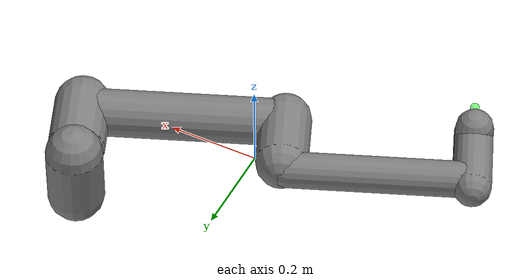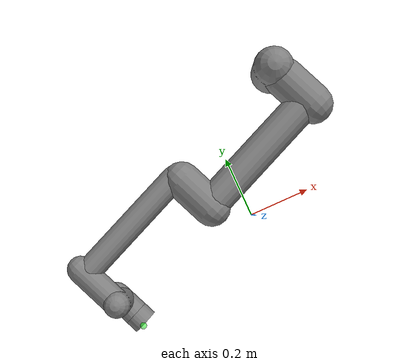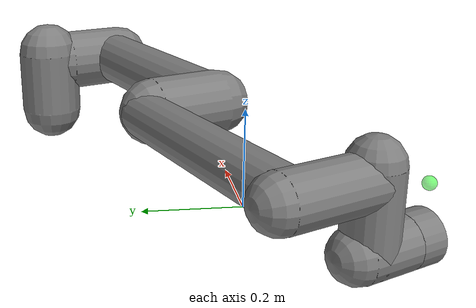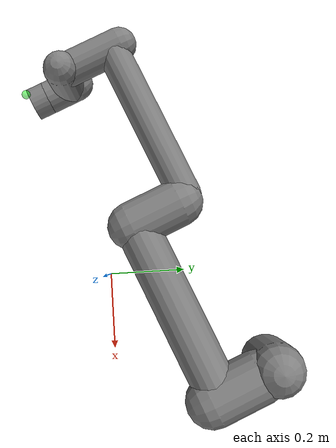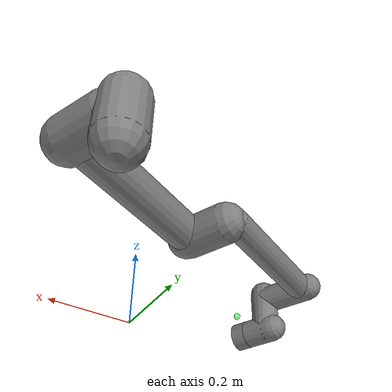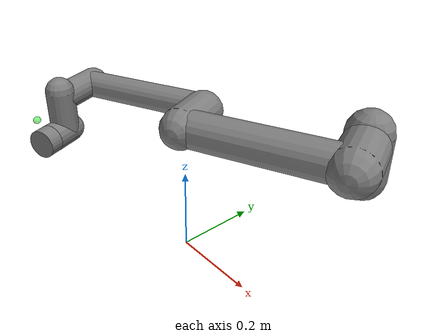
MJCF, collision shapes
<mujoco model="ur5e">

  <default>
    <include file="../assets/universal_robots_ur5e/ur5e_classes.xml" />
  </default>

  <asset>
    <include file="../assets/universal_robots_ur5e/ur5e_assets.xml" />
  </asset>

  <worldbody>
    <body name="ur5e_base" childclass="ur5e" pos="0.22331901 0.37537452 0.08791326" quat="-0.19858483999999996 -0.00311175 0.0012299899999999998 0.98007799">

      <inertial mass="4" pos="0 0 0" diaginertia="0.00443333156 0.00443333156 0.0072"/>
      <geom mesh="base_0" material="black" class="visual"/>
      <geom mesh="base_1" material="jointgray" class="visual" />
      <body name="shoulder_link" pos="0 0 0.163">
        <inertial mass="3.7" pos="0 0 0" diaginertia="0.0102675 0.0102675 0.00666"/>
        <joint name="shoulder_pan" axis="0 0 1"  damping="0.0"/>
        <geom mesh="shoulder_0" material="urblue" class="visual"/>
        <geom mesh="shoulder_1" material="black" class="visual"/>
        <geom mesh="shoulder_2" material="jointgray" class="visual"/>
        <geom class="collision" size="0.06 0.06" pos="0 0 -0.04"/>
        <body name="upper_arm_link" pos="0 0.138 0" quat="1 0 1 0">
          <inertial mass="8.393" pos="0 0 0.2125" diaginertia="0.133886 0.133886 0.0151074"/>
          <joint name="shoulder_lift" damping="0.0"/>
          <geom mesh="upperarm_0" material="linkgray" class="visual"/>
          <geom mesh="upperarm_1" material="black" class="visual"/>
          <geom mesh="upperarm_2" material="jointgray" class="visual"/>
          <geom mesh="upperarm_3" material="urblue" class="visual"/>
          <geom class="collision" pos="0 -0.04 0" quat="1 1 0 0" size="0.06 0.06"/>
          <geom class="collision" size="0.05 0.2" pos="0 0 0.2"/>
          <body name="forearm_link" pos="0 -0.131 0.425">
            <inertial mass="2.275" pos="0 0 0.196" diaginertia="0.0311796 0.0311796 0.004095"/>
            <joint name="elbow" class="size3_limited" damping="0.0"/>
            <geom mesh="forearm_0" material="urblue" class="visual"/>
            <geom mesh="forearm_1" material="linkgray" class="visual"/>
            <geom mesh="forearm_2" material="black" class="visual"/>
            <geom mesh="forearm_3" material="jointgray" class="visual"/>
            <geom class="collision" pos="0 0.08 0" quat="1 1 0 0" size="0.055 0.06"/>
            <geom class="collision" size="0.038 0.19" pos="0 0 0.2"/>
            <body name="wrist_1_link" pos="0 0 0.392" quat="1 0 1 0">
              <inertial mass="1.219" pos="0 0.127 0" diaginertia="0.0025599 0.0025599 0.0021942"/>
              <joint name="wrist_1" damping="0.0"/>
              <geom mesh="wrist1_0" material="black" class="visual"/>
              <geom mesh="wrist1_1" material="urblue" class="visual"/>
              <geom mesh="wrist1_2" material="jointgray" class="visual"/>
              <geom class="collision" pos="0 0.05 0" quat="1 1 0 0" size="0.04 0.07"/>
              <body name="wrist_2_link" pos="0 0.127 0">
                <inertial mass="1.219" pos="0 0 0.1" diaginertia="0.0025599 0.0025599 0.0021942"/>
                <joint name="wrist_2" axis="0 0 1" damping="0.0"/>
                <geom mesh="wrist2_0" material="black" class="visual"/>
                <geom mesh="wrist2_1" material="urblue" class="visual"/>
                <geom mesh="wrist2_2" material="jointgray" class="visual"/>
                <geom name="1" class="collision" size="0.04 0.06" pos="0 0 0.04"/>
                <geom name="2" class="collision" pos="0 0.02 0.1" quat="1 1 0 0" size="0.04 0.04"/>
                <body name="wrist_3_link" pos="0 0 0.1">
                  <inertial mass="0.1879" pos="0 0.0771683 0" quat="1 0 0 1"
                    diaginertia="0.000132134 9.90863e-05 9.90863e-05"/>
                  <joint name="wrist_3" damping="0.0"/>
                  <geom name="wrist3" material="linkgray" mesh="wrist3" class="visual" />
                  <geom name="eef_collision" class="eef_collision" pos="0 0.08 0" quat="1 1 0 0"
                    size="0.04 0.02" />

                  <!-- Flange position for flick 1 body task -->
                  <body name="flange" pos="0.00 0.10 -0.075" quat="0         0.7071         0.7071    0">

                  <!-- Flange position for flick 2 body task -->

                  <!-- Flange position for flick 3 task -->

                  <!-- for the cloth task (c1) -->

                    <site name="tcp" pos="0 0 0" size="0.01" rgba="0 1 0 0.5" group="2" />
                  </body>

                </body>
              </body>
            </body>
          </body>
        </body>
      </body>
    </body>
  </worldbody>

  <actuator>
    <!-- actuators for position control -->

    <!-- actuators for velocity control -->
    <include file="../assets/universal_robots_ur5e/actuator_velocity.xml"/>

    <!-- actuators for torque control -->

  </actuator>

  <sensor>
    <force  name="force"  site="tcp" />
    <torque name="torque" site="tcp" />
  </sensor>

</mujoco>

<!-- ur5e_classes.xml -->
<mujocoinclude>
	<default class="ur5e">
		<material specular="0.5" shininess="0.25" />
		<joint axis="0 1 0" range="-6.28319 6.28319" armature="0.1" />
		<general gaintype="fixed" biastype="affine" ctrlrange="-6.2831 6.2831" gainprm="2000"
			biasprm="0 -2000 -400" forcerange="-150 150" />
		<default class="size3">
			<default class="size3_limited">
				<joint range="-3.1415 3.1415" />
				<general ctrlrange="-3.1415 3.1415" />
			</default>
		</default>
		<default class="size1">
			<general gainprm="500" biasprm="0 -500 -100" forcerange="-28 28" />
		</default>
		<default class="visual">
			<geom type="mesh" contype="0" conaffinity="0" group="2" />
		</default>
		<default class="collision">
			<geom type="capsule"  contype="0" conaffinity="0" group="4" />
			<default class="eef_collision">
				<geom type="cylinder" />
			</default>
		</default>
		<site size="0.001" rgba="0.5 0.5 0.5 0.3" group="4" />
	</default>
</mujocoinclude>

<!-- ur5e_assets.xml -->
<mujocoinclude>
	<material name="black" rgba="0.033 0.033 0.033 1" />
	<material name="jointgray" rgba="0.278 0.278 0.278 1" />
	<material name="linkgray" rgba="0.82 0.82 0.82 1" />
	<material name="urblue" rgba="0.49 0.678 0.8 1" />

	<mesh file="../assets/universal_robots_ur5e/assets/base_0.obj" />
	<mesh file="../assets/universal_robots_ur5e/assets/base_1.obj" />
	<mesh file="../assets/universal_robots_ur5e/assets/shoulder_0.obj" />
	<mesh file="../assets/universal_robots_ur5e/assets/shoulder_1.obj" />
	<mesh file="../assets/universal_robots_ur5e/assets/shoulder_2.obj" />
	<mesh file="../assets/universal_robots_ur5e/assets/upperarm_0.obj" />
	<mesh file="../assets/universal_robots_ur5e/assets/upperarm_1.obj" />
	<mesh file="../assets/universal_robots_ur5e/assets/upperarm_2.obj" />
	<mesh file="../assets/universal_robots_ur5e/assets/upperarm_3.obj" />
	<mesh file="../assets/universal_robots_ur5e/assets/forearm_0.obj" />
	<mesh file="../assets/universal_robots_ur5e/assets/forearm_1.obj" />
	<mesh file="../assets/universal_robots_ur5e/assets/forearm_2.obj" />
	<mesh file="../assets/universal_robots_ur5e/assets/forearm_3.obj" />
	<mesh file="../assets/universal_robots_ur5e/assets/wrist1_0.obj" />
	<mesh file="../assets/universal_robots_ur5e/assets/wrist1_1.obj" />
	<mesh file="../assets/universal_robots_ur5e/assets/wrist1_2.obj" />
	<mesh file="../assets/universal_robots_ur5e/assets/wrist2_0.obj" />
	<mesh file="../assets/universal_robots_ur5e/assets/wrist2_1.obj" />
	<mesh file="../assets/universal_robots_ur5e/assets/wrist2_2.obj" />
	<mesh file="../assets/universal_robots_ur5e/assets/wrist3.obj" />
</mujocoinclude>

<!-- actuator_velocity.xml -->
<mujocoinclude>
	<velocity class="size3" name="ur5e_shoulder_pan"  joint="shoulder_pan"/>
    <velocity class="size3" name="ur5e_shoulder_lift" joint="shoulder_lift"/>
    <velocity class="size3_limited" name="ur5e_elbow"         joint="elbow"/>
    <velocity class="size1" name="ur5e_wrist_1"       joint="wrist_1"/>
    <velocity class="size1" name="ur5e_wrist_2"       joint="wrist_2"/>
    <velocity class="size1" name="ur5e_wrist_3"       joint="wrist_3"/>
</mujocoinclude>
